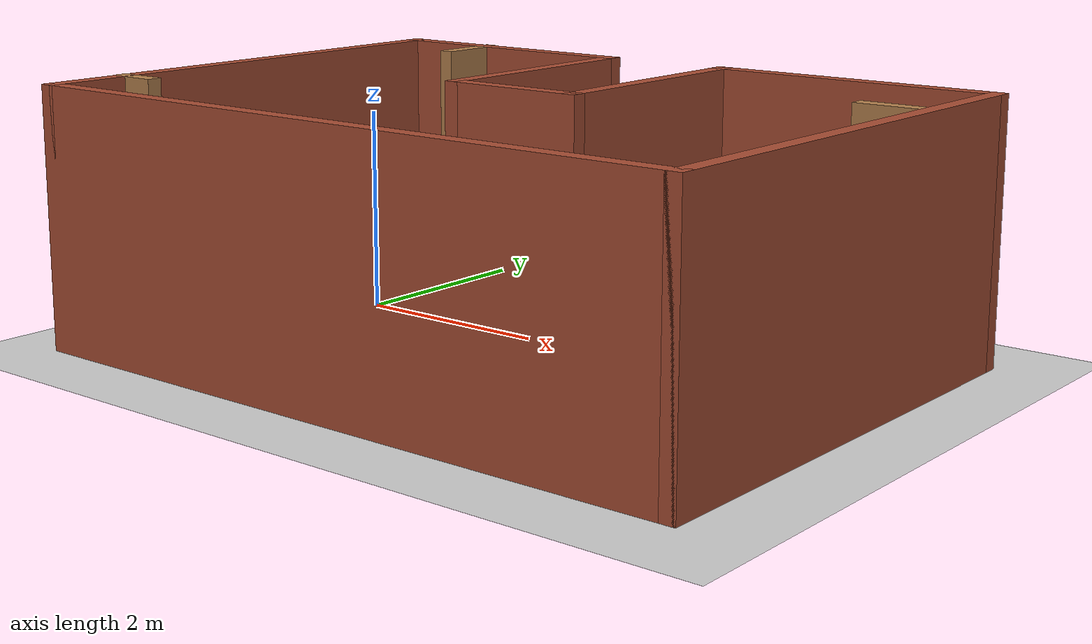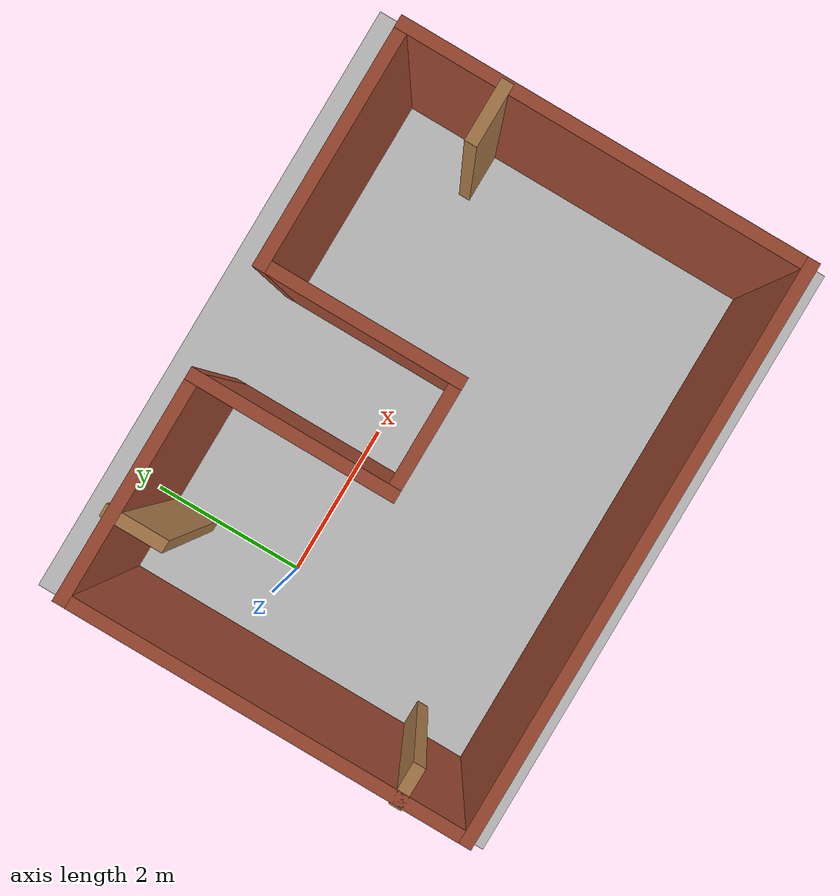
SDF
<sdf version="1.7">
 <world name="default">
  <light name="sun" type="directional">
   <pose>0 0 10 0 -0 0</pose>
   <diffuse>0.8 0.8 0.8 1</diffuse>
   <specular>0.2 0.2 0.2 1</specular>
   <attenuation>
    <range>1000</range>
    <constant>0.9</constant>
    <linear>0.01</linear>
    <quadratic>0.001</quadratic>
   </attenuation>
   <direction>-0.5 0.1 -0.9</direction>
   <spot><inner_angle>0</inner_angle><outer_angle>0</outer_angle><falloff>0</falloff></spot>
  </light>
  <model name="ground_plane">
   <static>1</static>
   <link name="link">
    <collision name="collision">
     <geometry><plane><normal>0 0 1</normal><size>100 100</size></plane></geometry>
     <surface>
      <contact><collide_bitmask>65535</collide_bitmask></contact>
      <friction><ode><mu>100</mu><mu2>50</mu2></ode></friction>
     </surface>
    </collision>
    <visual name="visual">
     <cast_shadows>0</cast_shadows>
     <geometry><plane><normal>0 0 1</normal><size>100 100</size></plane></geometry>
     <material>
      <script><uri>file://media/materials/scripts/gazebo.material</uri><name>Gazebo/Grey</name></script>
     </material>
    </visual>
   </link>
  </model>
  <gravity>0 0 -9.8</gravity>
  <magnetic_field>6e-06 2.3e-05 -4.2e-05</magnetic_field>
  <atmosphere type="adiabatic"/>
  <physics type="ode">
   <max_step_size>0.001</max_step_size>
   <real_time_factor>1</real_time_factor>
   <real_time_update_rate>1000</real_time_update_rate>
  </physics>
  <scene><ambient>0.4 0.4 0.4 1</ambient><background>0.7 0.7 0.7 1</background><shadows>1</shadows></scene>
  <spherical_coordinates>
   <surface_model>EARTH_WGS84</surface_model>
   <latitude_deg>0</latitude_deg>
   <longitude_deg>0</longitude_deg>
   <elevation>0</elevation>
   <heading_deg>0</heading_deg>
  </spherical_coordinates>
  <model name="world-4">
   <pose>2.35751 -0.594321 0 0 -0 0</pose>
   <link name="Wall_0">
    <collision name="Wall_0_Collision">
     <geometry><box><size>7 0.15 2.5</size></box></geometry>
     <pose>0 0 1.25 0 -0 0</pose>
    </collision>
    <visual name="Wall_0_Visual">
     <pose>0 0 1.25 0 -0 0</pose>
     <geometry><box><size>7 0.15 2.5</size></box></geometry>
     <material>
      <script><uri>file://media/materials/scripts/gazebo.material</uri><name>Gazebo/Bricks</name></script>
      <ambient>1 1 1 1</ambient>
     </material>
     <meta><layer>0</layer></meta>
    </visual>
    <pose>0.008668 -2.4575 0 0 -0 0</pose>
   </link>
   <link name="Wall_10">
    <collision name="Wall_10_Collision">
     <geometry><box><size>2.5 0.15 2.5</size></box></geometry>
     <pose>0 0 1.25 0 -0 0</pose>
    </collision>
    <visual name="Wall_10_Visual">
     <pose>0 0 1.25 0 -0 0</pose>
     <geometry><box><size>2.5 0.15 2.5</size></box></geometry>
     <material>
      <script><uri>file://media/materials/scripts/gazebo.material</uri><name>Gazebo/Bricks</name></script>
      <ambient>1 1 1 1</ambient>
     </material>
     <meta><layer>0</layer></meta>
    </visual>
    <pose>-0.766332 1.2175 0 0 -0 1.5708</pose>
   </link>
   <link name="Wall_11">
    <collision name="Wall_11_Collision">
     <geometry><box><size>2.8 0.15 2.5</size></box></geometry>
     <pose>0 0 1.25 0 -0 0</pose>
    </collision>
    <visual name="Wall_11_Visual">
     <pose>0 0 1.25 0 -0 0</pose>
     <geometry><box><size>2.8 0.15 2.5</size></box></geometry>
     <material>
      <script><uri>file://media/materials/scripts/gazebo.material</uri><name>Gazebo/Bricks</name></script>
      <ambient>1 1 1 1</ambient>
     </material>
     <meta><layer>0</layer></meta>
    </visual>
    <pose>-2.09133 2.3925 0 0 -0 3.14159</pose>
   </link>
   <link name="Wall_13">
    <collision name="Wall_13_Collision">
     <geometry><box><size>0.5 0.15 2.5</size></box></geometry>
     <pose>0 0 1.25 0 -0 0</pose>
    </collision>
    <visual name="Wall_13_Visual">
     <pose>0 0 1.25 0 -0 0</pose>
     <geometry><box><size>0.5 0.15 2.5</size></box></geometry>
     <material>
      <script><uri>file://media/materials/scripts/gazebo.material</uri><name>Gazebo/Wood</name></script>
      <ambient>1 1 1 1</ambient>
     </material>
     <meta><layer>0</layer></meta>
    </visual>
    <pose>-3.25867 -1.63424 0 0 -0 0</pose>
   </link>
   <link name="Wall_15">
    <collision name="Wall_15_Collision">
     <geometry><box><size>0.75 0.15 2.5</size></box></geometry>
     <pose>0 0 1.25 0 -0 0</pose>
    </collision>
    <visual name="Wall_15_Visual">
     <pose>0 0 1.25 0 -0 0</pose>
     <geometry><box><size>0.75 0.15 2.5</size></box></geometry>
     <material>
      <script><uri>file://media/materials/scripts/gazebo.material</uri><name>Gazebo/Wood</name></script>
      <ambient>1 1 1 1</ambient>
     </material>
     <meta><layer>0</layer></meta>
    </visual>
    <pose>3.10495 1.18166 0 0 -0 3.14159</pose>
   </link>
   <link name="Wall_18">
    <collision name="Wall_18_Collision">
     <geometry><box><size>0.75 0.15 2.5</size></box></geometry>
     <pose>0 0 1.25 0 -0 0</pose>
    </collision>
    <visual name="Wall_18_Visual">
     <pose>0 0 1.25 0 -0 0</pose>
     <geometry><box><size>0.75 0.15 2.5</size></box></geometry>
     <material>
      <script><uri>file://media/materials/scripts/gazebo.material</uri><name>Gazebo/Wood</name></script>
      <ambient>1 1 1 1</ambient>
     </material>
     <meta><layer>0</layer></meta>
    </visual>
    <pose>-2.41925 2.12345 0 0 -0 -1.5708</pose>
   </link>
   <link name="Wall_4">
    <collision name="Wall_4_Collision">
     <geometry><box><size>5 0.15 2.5</size></box></geometry>
     <pose>0 0 1.25 0 -0 0</pose>
    </collision>
    <visual name="Wall_4_Visual">
     <pose>0 0 1.25 0 -0 0</pose>
     <geometry><box><size>5 0.15 2.5</size></box></geometry>
     <material>
      <script><uri>file://media/materials/scripts/gazebo.material</uri><name>Gazebo/Bricks</name></script>
      <ambient>1 1 1 1</ambient>
     </material>
     <meta><layer>0</layer></meta>
    </visual>
    <pose>-3.41633 -0.0325 0 0 -0 1.5708</pose>
   </link>
   <link name="Wall_6">
    <collision name="Wall_6_Collision">
     <geometry><box><size>5 0.15 2.5</size></box></geometry>
     <pose>0 0 1.25 0 -0 0</pose>
    </collision>
    <visual name="Wall_6_Visual">
     <pose>0 0 1.25 0 -0 0</pose>
     <geometry><box><size>5 0.15 2.5</size></box></geometry>
     <material>
      <script><uri>file://media/materials/scripts/gazebo.material</uri><name>Gazebo/Bricks</name></script>
      <ambient>1 1 1 1</ambient>
     </material>
     <meta><layer>0</layer></meta>
    </visual>
    <pose>3.43367 -0.0325 0 0 -0 1.5708</pose>
   </link>
   <link name="Wall_7">
    <collision name="Wall_7_Collision">
     <geometry><box><size>3 0.15 2.5</size></box></geometry>
     <pose>0 0 1.25 0 -0 0</pose>
    </collision>
    <visual name="Wall_7_Visual">
     <pose>0 0 1.25 0 -0 0</pose>
     <geometry><box><size>3 0.15 2.5</size></box></geometry>
     <material>
      <script><uri>file://media/materials/scripts/gazebo.material</uri><name>Gazebo/Bricks</name></script>
      <ambient>1 1 1 1</ambient>
     </material>
     <meta><layer>0</layer></meta>
    </visual>
    <pose>2.00867 2.3925 0 0 -0 3.14159</pose>
   </link>
   <link name="Wall_8">
    <collision name="Wall_8_Collision">
     <geometry><box><size>2.5 0.15 2.5</size></box></geometry>
     <pose>0 0 1.25 0 -0 0</pose>
    </collision>
    <visual name="Wall_8_Visual">
     <pose>0 0 1.25 0 -0 0</pose>
     <geometry><box><size>2.5 0.15 2.5</size></box></geometry>
     <material>
      <script><uri>file://media/materials/scripts/gazebo.material</uri><name>Gazebo/Bricks</name></script>
      <ambient>1 1 1 1</ambient>
     </material>
     <meta><layer>0</layer></meta>
    </visual>
    <pose>0.583668 1.2175 0 0 -0 -1.5708</pose>
   </link>
   <link name="Wall_9">
    <collision name="Wall_9_Collision">
     <geometry><box><size>1.5 0.15 2.5</size></box></geometry>
     <pose>0 0 1.25 0 -0 0</pose>
    </collision>
    <visual name="Wall_9_Visual">
     <pose>0 0 1.25 0 -0 0</pose>
     <geometry><box><size>1.5 0.15 2.5</size></box></geometry>
     <material>
      <script><uri>file://media/materials/scripts/gazebo.material</uri><name>Gazebo/Bricks</name></script>
      <ambient>1 1 1 1</ambient>
     </material>
     <meta><layer>0</layer></meta>
    </visual>
    <pose>-0.091332 0.0425 0 0 -0 3.14159</pose>
   </link>
   <static>1</static>
  </model>
 </world>
</sdf>
